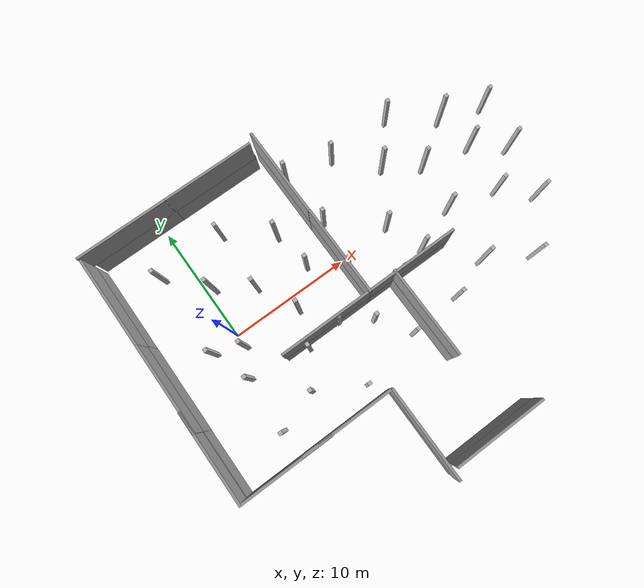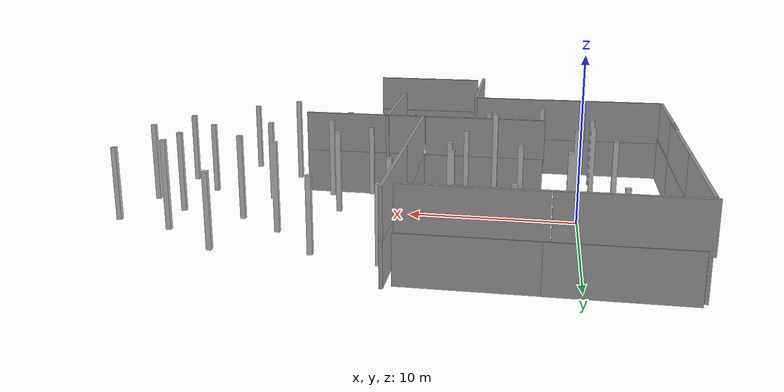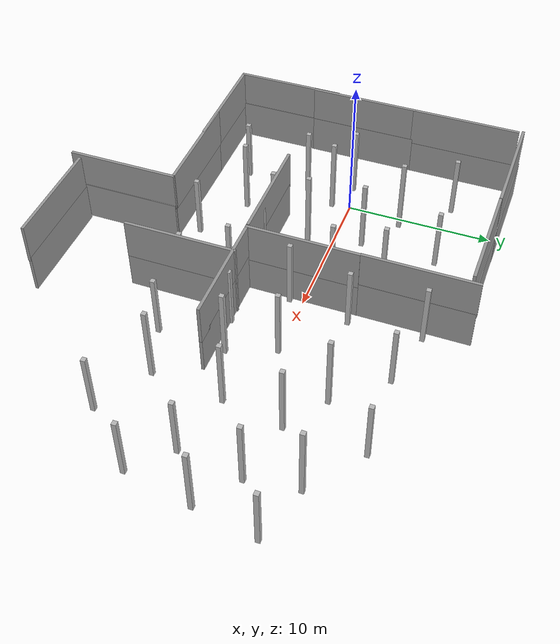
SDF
<sdf version="1.6">
 <world name="world">
  <model name="ground_plane">
   <static>1</static>
   <link name="link">
    <collision name="collision">
     <geometry><plane><normal>0 0 1</normal><size>100 100</size></plane></geometry>
     <surface><friction><ode><mu>100</mu><mu2>50</mu2></ode></friction></surface>
    </collision>
    <velocity_decay><linear>0</linear><angular>0</angular></velocity_decay>
   </link>
  </model>
  <model name="pillars">
   <pose>-4.38902 -1.34794 0 0 -0 0</pose>
   <static>1</static>
   <link name="body">
    <visual name="visual">
     <pose>0 0 -0.001 0 -0 0</pose>
     <geometry><mesh><uri>model://pillars/pillars4.dae</uri><scale>1 1 1</scale></mesh></geometry>
    </visual>
    <collision name="pillars">
     <pose>0 0 -0.001 0 -0 0</pose>
     <geometry><mesh><uri>model://pillars/pillars4.dae</uri><scale>1 1 1</scale></mesh></geometry>
    </collision>
    <velocity_decay><linear>0</linear><angular>0</angular></velocity_decay>
   </link>
  </model>
  <physics name="default_physics" default="0" type="ode">
   <max_step_size>0.001</max_step_size>
   <real_time_factor>1</real_time_factor>
   <real_time_update_rate>1000</real_time_update_rate>
  </physics>
  <scene><ambient>0.4 0.4 0.4 1</ambient><background>0.7 0.7 0.7 1</background><shadows>1</shadows></scene>
  <spherical_coordinates>
   <surface_model>EARTH_WGS84</surface_model>
   <latitude_deg>0</latitude_deg>
   <longitude_deg>0</longitude_deg>
   <elevation>0</elevation>
   <heading_deg>0</heading_deg>
  </spherical_coordinates>
  <gravity>0 0 -9.8</gravity>
  <magnetic_field>6e-06 2.3e-05 -4.2e-05</magnetic_field>
  <atmosphere type="adiabatic"/>
  <model name="grey_wall">
   <static>1</static>
   <link name="link">
    <pose>0 0 1.4 0 -0 0</pose>
    <collision name="collision"><geometry><box><size>7.5 0.2 2.8</size></box></geometry></collision>
    <visual name="visual">
     <cast_shadows>0</cast_shadows>
     <geometry><box><size>7.5 0.2 2.8</size></box></geometry>
     <material>
      <script>
       <uri>model://grey_wall/materials/scripts</uri>
       <uri>model://grey_wall/materials/textures</uri>
       <name>vrc/grey_wall</name>
      </script>
     </material>
    </visual>
   </link>
   <pose>13.5722 -3.83891 0 0 -0 0</pose>
  </model>
  <model name="grey_wall_clone">
   <static>1</static>
   <link name="link">
    <pose>0 0 1.4 0 -0 0</pose>
    <collision name="collision"><geometry><box><size>7.5 0.2 2.8</size></box></geometry></collision>
    <visual name="visual">
     <cast_shadows>0</cast_shadows>
     <geometry><box><size>7.5 0.2 2.8</size></box></geometry>
     <material>
      <script>
       <uri>model://grey_wall/materials/scripts</uri>
       <uri>model://grey_wall/materials/textures</uri>
       <name>vrc/grey_wall</name>
      </script>
     </material>
    </visual>
   </link>
   <pose>13.5722 -3.83891 2.5 0 -0 0</pose>
  </model>
  <model name="grey_wall_clone_clone">
   <static>1</static>
   <link name="link">
    <pose>0 0 1.4 0 -0 0</pose>
    <collision name="collision"><geometry><box><size>7.5 0.2 2.8</size></box></geometry></collision>
    <visual name="visual">
     <cast_shadows>0</cast_shadows>
     <geometry><box><size>7.5 0.2 2.8</size></box></geometry>
     <material>
      <script>
       <uri>model://grey_wall/materials/scripts</uri>
       <uri>model://grey_wall/materials/textures</uri>
       <name>vrc/grey_wall</name>
      </script>
     </material>
    </visual>
   </link>
   <pose>9.726 -0.192574 2.5 0 -0 1.57</pose>
  </model>
  <model name="grey_wall_clone_clone_clone">
   <static>1</static>
   <link name="link">
    <pose>0 0 1.4 0 -0 0</pose>
    <collision name="collision"><geometry><box><size>7.5 0.2 2.8</size></box></geometry></collision>
    <visual name="visual">
     <cast_shadows>0</cast_shadows>
     <geometry><box><size>7.5 0.2 2.8</size></box></geometry>
     <material>
      <script>
       <uri>model://grey_wall/materials/scripts</uri>
       <uri>model://grey_wall/materials/textures</uri>
       <name>vrc/grey_wall</name>
      </script>
     </material>
    </visual>
   </link>
   <pose>9.726 -0.192574 0 0 -0 1.57</pose>
  </model>
  <model name="grey_wall_clone_clone_clone_clone">
   <static>1</static>
   <link name="link">
    <pose>0 0 1.4 0 -0 0</pose>
    <collision name="collision"><geometry><box><size>7.5 0.2 2.8</size></box></geometry></collision>
    <visual name="visual">
     <cast_shadows>0</cast_shadows>
     <geometry><box><size>7.5 0.2 2.8</size></box></geometry>
     <material>
      <script>
       <uri>model://grey_wall/materials/scripts</uri>
       <uri>model://grey_wall/materials/textures</uri>
       <name>vrc/grey_wall</name>
      </script>
     </material>
    </visual>
   </link>
   <pose>9.72423 7.25977 0 0 -0 1.57</pose>
  </model>
  <model name="grey_wall_clone_clone_clone_0">
   <static>1</static>
   <link name="link">
    <pose>0 0 1.4 0 -0 0</pose>
    <collision name="collision"><geometry><box><size>7.5 0.2 2.8</size></box></geometry></collision>
    <visual name="visual">
     <cast_shadows>0</cast_shadows>
     <geometry><box><size>7.5 0.2 2.8</size></box></geometry>
     <material>
      <script>
       <uri>model://grey_wall/materials/scripts</uri>
       <uri>model://grey_wall/materials/textures</uri>
       <name>vrc/grey_wall</name>
      </script>
     </material>
    </visual>
   </link>
   <pose>9.7042 7.30584 2.5 0 -0 1.57</pose>
  </model>
  <model name="grey_wall_clone_0">
   <static>1</static>
   <link name="link">
    <pose>0 0 1.4 0 -0 0</pose>
    <collision name="collision"><geometry><box><size>7.5 0.2 2.8</size></box></geometry></collision>
    <visual name="visual">
     <cast_shadows>0</cast_shadows>
     <geometry><box><size>7.5 0.2 2.8</size></box></geometry>
     <material>
      <script>
       <uri>model://grey_wall/materials/scripts</uri>
       <uri>model://grey_wall/materials/textures</uri>
       <name>vrc/grey_wall</name>
      </script>
     </material>
    </visual>
   </link>
   <pose>5.52403 10.5022 0 0 -0 0</pose>
  </model>
  <model name="grey_wall_clone_clone_0">
   <static>1</static>
   <link name="link">
    <pose>0 0 1.4 0 -0 0</pose>
    <collision name="collision"><geometry><box><size>7.5 0.2 2.8</size></box></geometry></collision>
    <visual name="visual">
     <cast_shadows>0</cast_shadows>
     <geometry><box><size>7.5 0.2 2.8</size></box></geometry>
     <material>
      <script>
       <uri>model://grey_wall/materials/scripts</uri>
       <uri>model://grey_wall/materials/textures</uri>
       <name>vrc/grey_wall</name>
      </script>
     </material>
    </visual>
   </link>
   <pose>5.43048 10.4463 2.5 0 -0 0</pose>
  </model>
  <model name="grey_wall_clone_0_clone">
   <static>1</static>
   <link name="link">
    <pose>0 0 1.4 0 -0 0</pose>
    <collision name="collision"><geometry><box><size>7.5 0.2 2.8</size></box></geometry></collision>
    <visual name="visual">
     <cast_shadows>0</cast_shadows>
     <geometry><box><size>7.5 0.2 2.8</size></box></geometry>
     <material>
      <script>
       <uri>model://grey_wall/materials/scripts</uri>
       <uri>model://grey_wall/materials/textures</uri>
       <name>vrc/grey_wall</name>
      </script>
     </material>
    </visual>
   </link>
   <pose>-1.73699 10.5164 0 0 -0 0</pose>
  </model>
  <model name="grey_wall_clone_clone_0_clone">
   <static>1</static>
   <link name="link">
    <pose>0 0 1.4 0 -0 0</pose>
    <collision name="collision"><geometry><box><size>7.5 0.2 2.8</size></box></geometry></collision>
    <visual name="visual">
     <cast_shadows>0</cast_shadows>
     <geometry><box><size>7.5 0.2 2.8</size></box></geometry>
     <material>
      <script>
       <uri>model://grey_wall/materials/scripts</uri>
       <uri>model://grey_wall/materials/textures</uri>
       <name>vrc/grey_wall</name>
      </script>
     </material>
    </visual>
   </link>
   <pose>-2.10122 10.4554 2.5 0 -0 0</pose>
  </model>
  <model name="grey_wall_clone_clone_clone_clone_clone">
   <static>1</static>
   <link name="link">
    <pose>0 0 1.4 0 -0 0</pose>
    <collision name="collision"><geometry><box><size>7.5 0.2 2.8</size></box></geometry></collision>
    <visual name="visual">
     <cast_shadows>0</cast_shadows>
     <geometry><box><size>7.5 0.2 2.8</size></box></geometry>
     <material>
      <script>
       <uri>model://grey_wall/materials/scripts</uri>
       <uri>model://grey_wall/materials/textures</uri>
       <name>vrc/grey_wall</name>
      </script>
     </material>
    </visual>
   </link>
   <pose>-5.6752 6.4961 0 0 -0 1.57</pose>
  </model>
  <model name="grey_wall_clone_clone_clone_clone_clone_0">
   <static>1</static>
   <link name="link">
    <pose>0 0 1.4 0 -0 0</pose>
    <collision name="collision"><geometry><box><size>7.5 0.2 2.8</size></box></geometry></collision>
    <visual name="visual">
     <cast_shadows>0</cast_shadows>
     <geometry><box><size>7.5 0.2 2.8</size></box></geometry>
     <material>
      <script>
       <uri>model://grey_wall/materials/scripts</uri>
       <uri>model://grey_wall/materials/textures</uri>
       <name>vrc/grey_wall</name>
      </script>
     </material>
    </visual>
   </link>
   <pose>-5.67055 -0.925992 0 0 -0 1.57</pose>
  </model>
  <model name="grey_wall_clone_clone_clone_0_clone">
   <static>1</static>
   <link name="link">
    <pose>0 0 1.4 0 -0 0</pose>
    <collision name="collision"><geometry><box><size>7.5 0.2 2.8</size></box></geometry></collision>
    <visual name="visual">
     <cast_shadows>0</cast_shadows>
     <geometry><box><size>7.5 0.2 2.8</size></box></geometry>
     <material>
      <script>
       <uri>model://grey_wall/materials/scripts</uri>
       <uri>model://grey_wall/materials/textures</uri>
       <name>vrc/grey_wall</name>
      </script>
     </material>
    </visual>
   </link>
   <pose>-5.66781 6.45311 2.5 0 -0 1.57</pose>
  </model>
  <model name="grey_wall_clone_clone_clone_0_clone_0">
   <static>1</static>
   <link name="link">
    <pose>0 0 1.4 0 -0 0</pose>
    <collision name="collision"><geometry><box><size>7.5 0.2 2.8</size></box></geometry></collision>
    <visual name="visual">
     <cast_shadows>0</cast_shadows>
     <geometry><box><size>7.5 0.2 2.8</size></box></geometry>
     <material>
      <script>
       <uri>model://grey_wall/materials/scripts</uri>
       <uri>model://grey_wall/materials/textures</uri>
       <name>vrc/grey_wall</name>
      </script>
     </material>
    </visual>
   </link>
   <pose>-5.67755 -0.915914 2.5 0 -0 1.57</pose>
  </model>
  <model name="grey_wall_clone_clone_clone_clone_clone_0_clone">
   <static>1</static>
   <link name="link">
    <pose>0 0 1.4 0 -0 0</pose>
    <collision name="collision"><geometry><box><size>7.5 0.2 2.8</size></box></geometry></collision>
    <visual name="visual">
     <cast_shadows>0</cast_shadows>
     <geometry><box><size>7.5 0.2 2.8</size></box></geometry>
     <material>
      <script>
       <uri>model://grey_wall/materials/scripts</uri>
       <uri>model://grey_wall/materials/textures</uri>
       <name>vrc/grey_wall</name>
      </script>
     </material>
    </visual>
   </link>
   <pose>-5.69233 -6.58856 0 0 -0 1.57</pose>
  </model>
  <model name="grey_wall_clone_clone_clone_0_clone_0_clone">
   <static>1</static>
   <link name="link">
    <pose>0 0 1.4 0 -0 0</pose>
    <collision name="collision"><geometry><box><size>7.5 0.2 2.8</size></box></geometry></collision>
    <visual name="visual">
     <cast_shadows>0</cast_shadows>
     <geometry><box><size>7.5 0.2 2.8</size></box></geometry>
     <material>
      <script>
       <uri>model://grey_wall/materials/scripts</uri>
       <uri>model://grey_wall/materials/textures</uri>
       <name>vrc/grey_wall</name>
      </script>
     </material>
    </visual>
   </link>
   <pose>-5.7381 -6.56763 2.5 0 -0 1.57</pose>
  </model>
  <model name="grey_wall_clone_0_clone_clone">
   <static>1</static>
   <link name="link">
    <pose>0 0 1.4 0 -0 0</pose>
    <collision name="collision"><geometry><box><size>7.5 0.2 2.8</size></box></geometry></collision>
    <visual name="visual">
     <cast_shadows>0</cast_shadows>
     <geometry><box><size>7.5 0.2 2.8</size></box></geometry>
     <material>
      <script>
       <uri>model://grey_wall/materials/scripts</uri>
       <uri>model://grey_wall/materials/textures</uri>
       <name>vrc/grey_wall</name>
      </script>
     </material>
    </visual>
   </link>
   <pose>5.8738 -3.84512 0 0 -0 0</pose>
  </model>
  <model name="grey_wall_clone_clone_1">
   <static>1</static>
   <link name="link">
    <pose>0 0 1.4 0 -0 0</pose>
    <collision name="collision"><geometry><box><size>7.5 0.2 2.8</size></box></geometry></collision>
    <visual name="visual">
     <cast_shadows>0</cast_shadows>
     <geometry><box><size>7.5 0.2 2.8</size></box></geometry>
     <material>
      <script>
       <uri>model://grey_wall/materials/scripts</uri>
       <uri>model://grey_wall/materials/textures</uri>
       <name>vrc/grey_wall</name>
      </script>
     </material>
    </visual>
   </link>
   <pose>5.81156 -3.84789 2.5 0 -0 0</pose>
  </model>
  <model name="grey_wall_clone_0_clone_clone_clone">
   <static>1</static>
   <link name="link">
    <pose>0 0 1.4 0 -0 0</pose>
    <collision name="collision"><geometry><box><size>7.5 0.2 2.8</size></box></geometry></collision>
    <visual name="visual">
     <cast_shadows>0</cast_shadows>
     <geometry><box><size>7.5 0.2 2.8</size></box></geometry>
     <material>
      <script>
       <uri>model://grey_wall/materials/scripts</uri>
       <uri>model://grey_wall/materials/textures</uri>
       <name>vrc/grey_wall</name>
      </script>
     </material>
    </visual>
   </link>
   <pose>-1.88628 -10.2551 0 0 -0 0</pose>
  </model>
  <model name="grey_wall_clone_0_clone_clone_clone_0">
   <static>1</static>
   <link name="link">
    <pose>0 0 1.4 0 -0 0</pose>
    <collision name="collision"><geometry><box><size>7.5 0.2 2.8</size></box></geometry></collision>
    <visual name="visual">
     <cast_shadows>0</cast_shadows>
     <geometry><box><size>7.5 0.2 2.8</size></box></geometry>
     <material>
      <script>
       <uri>model://grey_wall/materials/scripts</uri>
       <uri>model://grey_wall/materials/textures</uri>
       <name>vrc/grey_wall</name>
      </script>
     </material>
    </visual>
   </link>
   <pose>3.07511 -10.247 0 0 -0 0</pose>
  </model>
  <model name="grey_wall_clone_clone_1_clone">
   <static>1</static>
   <link name="link">
    <pose>0 0 1.4 0 -0 0</pose>
    <collision name="collision"><geometry><box><size>7.5 0.2 2.8</size></box></geometry></collision>
    <visual name="visual">
     <cast_shadows>0</cast_shadows>
     <geometry><box><size>7.5 0.2 2.8</size></box></geometry>
     <material>
      <script>
       <uri>model://grey_wall/materials/scripts</uri>
       <uri>model://grey_wall/materials/textures</uri>
       <name>vrc/grey_wall</name>
      </script>
     </material>
    </visual>
   </link>
   <pose>-1.99118 -10.2312 2.5 0 -0 0</pose>
  </model>
  <model name="grey_wall_clone_clone_1_clone_clone">
   <static>1</static>
   <link name="link">
    <pose>0 0 1.4 0 -0 0</pose>
    <collision name="collision"><geometry><box><size>7.5 0.2 2.8</size></box></geometry></collision>
    <visual name="visual">
     <cast_shadows>0</cast_shadows>
     <geometry><box><size>7.5 0.2 2.8</size></box></geometry>
     <material>
      <script>
       <uri>model://grey_wall/materials/scripts</uri>
       <uri>model://grey_wall/materials/textures</uri>
       <name>vrc/grey_wall</name>
      </script>
     </material>
    </visual>
   </link>
   <pose>3.03557 -10.1922 2.5 0 -0 0</pose>
  </model>
  <model name="grey_wall_clone_clone_clone_clone_clone_0_clone_0">
   <static>1</static>
   <link name="link">
    <pose>0 0 1.4 0 -0 0</pose>
    <collision name="collision"><geometry><box><size>7.5 0.2 2.8</size></box></geometry></collision>
    <visual name="visual">
     <cast_shadows>0</cast_shadows>
     <geometry><box><size>7.5 0.2 2.8</size></box></geometry>
     <material>
      <script>
       <uri>model://grey_wall/materials/scripts</uri>
       <uri>model://grey_wall/materials/textures</uri>
       <name>vrc/grey_wall</name>
      </script>
     </material>
    </visual>
   </link>
   <pose>12.0107 -7.4078 0 0 -0 1.57</pose>
  </model>
  <model name="grey_wall_clone_clone_clone_0_clone_0_clone_0">
   <static>1</static>
   <link name="link">
    <pose>0 0 1.4 0 -0 0</pose>
    <collision name="collision"><geometry><box><size>7.5 0.2 2.8</size></box></geometry></collision>
    <visual name="visual">
     <cast_shadows>0</cast_shadows>
     <geometry><box><size>7.5 0.2 2.8</size></box></geometry>
     <material>
      <script>
       <uri>model://grey_wall/materials/scripts</uri>
       <uri>model://grey_wall/materials/textures</uri>
       <name>vrc/grey_wall</name>
      </script>
     </material>
    </visual>
   </link>
   <pose>12.0233 -7.4059 2.5 0 -0 1.57</pose>
  </model>
  <light name="user_point_light_0" type="point">
   <pose>7.28336 -5.6677 1 0 -0 0</pose>
   <diffuse>0.5 0.5 0.5 1</diffuse>
   <specular>0.1 0.1 0.1 1</specular>
   <attenuation>
    <range>20</range>
    <constant>0.5</constant>
    <linear>0.01</linear>
    <quadratic>0.001</quadratic>
   </attenuation>
   <cast_shadows>0</cast_shadows>
   <direction>0 0 -1</direction>
  </light>
  <model name="grey_wall_clone_0_clone_clone_clone_0_clone">
   <static>1</static>
   <link name="link">
    <pose>0 0 1.4 0 -0 0</pose>
    <collision name="collision"><geometry><box><size>7.5 0.2 2.8</size></box></geometry></collision>
    <visual name="visual">
     <cast_shadows>0</cast_shadows>
     <geometry><box><size>7.5 0.2 2.8</size></box></geometry>
     <material>
      <script>
       <uri>model://grey_wall/materials/scripts</uri>
       <uri>model://grey_wall/materials/textures</uri>
       <name>vrc/grey_wall</name>
      </script>
     </material>
    </visual>
   </link>
   <pose>10.9652 -16.8254 0 0 -0 0</pose>
  </model>
  <model name="grey_wall_clone_clone_1_clone_clone_clone">
   <static>1</static>
   <link name="link">
    <pose>0 0 1.4 0 -0 0</pose>
    <collision name="collision"><geometry><box><size>7.5 0.2 2.8</size></box></geometry></collision>
    <visual name="visual">
     <cast_shadows>0</cast_shadows>
     <geometry><box><size>7.5 0.2 2.8</size></box></geometry>
     <material>
      <script>
       <uri>model://grey_wall/materials/scripts</uri>
       <uri>model://grey_wall/materials/textures</uri>
       <name>vrc/grey_wall</name>
      </script>
     </material>
    </visual>
   </link>
   <pose>10.9906 -16.8458 2.5 0 -0 0</pose>
  </model>
  <model name="grey_wall_clone_clone_clone_clone_clone_0_clone_0_clone">
   <static>1</static>
   <link name="link">
    <pose>0 0 1.4 0 -0 0</pose>
    <collision name="collision"><geometry><box><size>7.5 0.2 2.8</size></box></geometry></collision>
    <visual name="visual">
     <cast_shadows>0</cast_shadows>
     <geometry><box><size>7.5 0.2 2.8</size></box></geometry>
     <material>
      <script>
       <uri>model://grey_wall/materials/scripts</uri>
       <uri>model://grey_wall/materials/textures</uri>
       <name>vrc/grey_wall</name>
      </script>
     </material>
    </visual>
   </link>
   <pose>6.92124 -13.9274 0 0 -0 1.57</pose>
  </model>
  <model name="grey_wall_clone_clone_clone_0_clone_0_clone_0_clone">
   <static>1</static>
   <link name="link">
    <pose>0 0 1.4 0 -0 0</pose>
    <collision name="collision"><geometry><box><size>7.5 0.2 2.8</size></box></geometry></collision>
    <visual name="visual">
     <cast_shadows>0</cast_shadows>
     <geometry><box><size>7.5 0.2 2.8</size></box></geometry>
     <material>
      <script>
       <uri>model://grey_wall/materials/scripts</uri>
       <uri>model://grey_wall/materials/textures</uri>
       <name>vrc/grey_wall</name>
      </script>
     </material>
    </visual>
   </link>
   <pose>6.85747 -13.8976 2.5 0 -0 1.57</pose>
  </model>
 </world>
</sdf>
